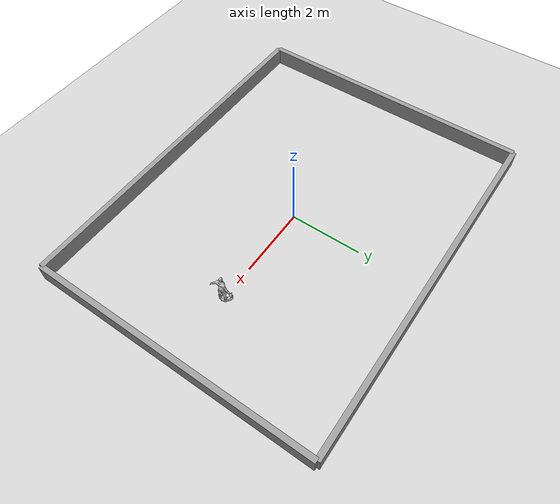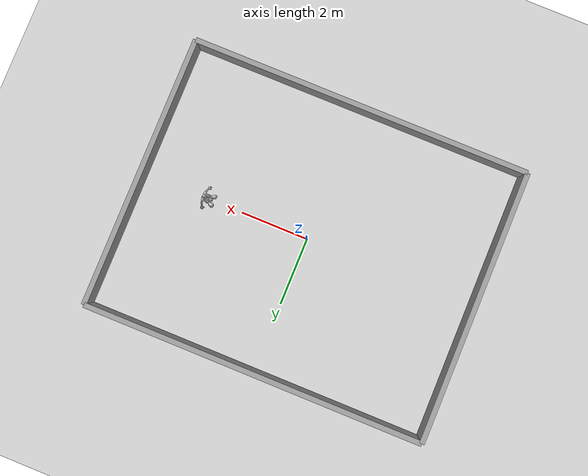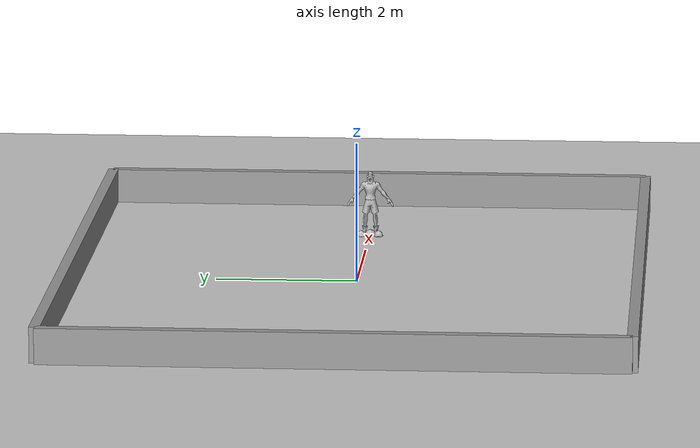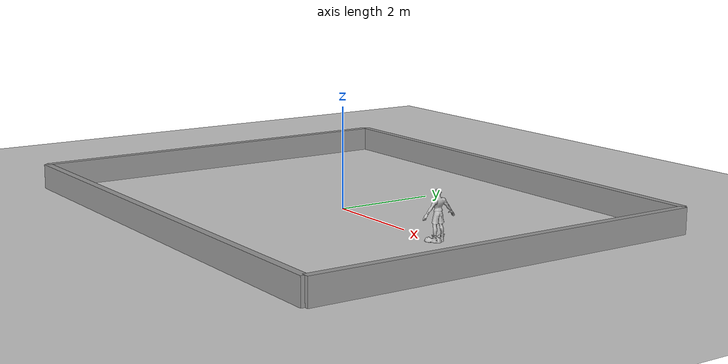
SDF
<sdf version="1.9">
 <world name="default">
  <plugin filename="gz-sim-sensors-system" name="gz::sim::systems::Sensors">
   <render_engine>ogre2</render_engine>
  </plugin>
  <plugin filename="gz-sim-physics-system" name="gz::sim::systems::Physics"/>
  <plugin filename="gz-sim-user-commands-system" name="gz::sim::systems::UserCommands"/>
  <plugin filename="gz-sim-scene-broadcaster-system" name="gz::sim::systems::SceneBroadcaster"/>
  <light name="sun" type="directional">
   <pose>0 0 10 0 0 0</pose>
   <diffuse>0.8 0.8 0.8 1</diffuse>
   <specular>0.2 0.2 0.2 1</specular>
   <attenuation>
    <range>1000</range>
    <constant>0.9</constant>
    <linear>0.01</linear>
    <quadratic>0.001</quadratic>
   </attenuation>
   <direction>-0.5 0.1 -0.9</direction>
  </light>
  <model name="ground_plane">
   <static>1</static>
   <link name="link">
    <collision name="collision">
     <geometry><plane><normal>0 0 1</normal><size>100 100</size></plane></geometry>
     <surface><friction><ode><mu>100</mu><mu2>50</mu2></ode></friction></surface>
    </collision>
    <visual name="visual">
     <cast_shadows>0</cast_shadows>
     <geometry><plane><normal>0 0 1</normal><size>100 100</size></plane></geometry>
     <material>
      <script><uri>file://media/materials/scripts/gazebo.material</uri><name>Gazebo/Grey</name></script>
     </material>
    </visual>
   </link>
  </model>
  <model name="simple_room">
   <static>1</static>
   <link name="west_wall">
    <pose>-5 0 0 0 0 0</pose>
    <collision name="collision">
     <geometry><box><size>0.15 8 0.5</size></box></geometry>
     <pose>0 0 0.25 0 0 0</pose>
    </collision>
    <visual name="visual">
     <pose>0 0 0.25 0 0 0</pose>
     <geometry><box><size>0.15 8 0.5</size></box></geometry>
     <material>
      <script><uri>file://media/materials/scripts/gazebo.material</uri><name>Gazebo/Grey</name></script>
      <ambient>1 1 1 1</ambient>
     </material>
    </visual>
   </link>
   <link name="east_wall">
    <pose>5 0 0 0 0 0</pose>
    <collision name="collision">
     <geometry><box><size>0.15 8 0.5</size></box></geometry>
     <pose>0 0 0.25 0 0 0</pose>
    </collision>
    <visual name="visual">
     <pose>0 0 0.25 0 0 0</pose>
     <geometry><box><size>0.15 8 0.5</size></box></geometry>
     <material>
      <script><uri>file://media/materials/scripts/gazebo.material</uri><name>Gazebo/Grey</name></script>
      <ambient>1 1 1 1</ambient>
     </material>
    </visual>
   </link>
   <link name="north_wall">
    <pose>0 4 0 0 0 0</pose>
    <collision name="collision">
     <geometry><box><size>10 0.15 0.5</size></box></geometry>
     <pose>0 0 0.25 0 0 0</pose>
    </collision>
    <visual name="visual">
     <pose>0 0 0.25 0 0 0</pose>
     <geometry><box><size>10 0.15 0.5</size></box></geometry>
     <material>
      <script><uri>file://media/materials/scripts/gazebo.material</uri><name>Gazebo/Grey</name></script>
      <ambient>1 1 1 1</ambient>
     </material>
    </visual>
   </link>
   <link name="south_wall">
    <pose>0 -4 0 0 0 0</pose>
    <collision name="collision">
     <geometry><box><size>10 0.15 0.5</size></box></geometry>
     <pose>0 0 0.25 0 0 0</pose>
    </collision>
    <visual name="visual">
     <pose>0 0 0.25 0 0 0</pose>
     <geometry><box><size>10 0.15 0.5</size></box></geometry>
     <material>
      <script><uri>file://media/materials/scripts/gazebo.material</uri><name>Gazebo/Grey</name></script>
      <ambient>1 1 1 1</ambient>
     </material>
    </visual>
   </link>
  </model>
  <model name="lebron">
   <pose>3 0 0 1.5708 0 -1.5708</pose>
   <static>true</static>
   <link name="link">
    <visual name="visual">
     <geometry><mesh><uri>model://lebron/lebron.obj</uri><scale>0.5 0.5 0.5</scale></mesh></geometry>
    </visual>
    <collision name="collision"><geometry><mesh><uri>model://lebron/lebron.obj</uri></mesh></geometry></collision>
   </link>
  </model>
  <gravity>0 0 -9.8</gravity>
  <magnetic_field>6e-06 2.3e-05 -4.2e-05</magnetic_field>
  <atmosphere type="adiabatic"/>
  <physics name="default_physics" type="ode">
   <max_step_size>0.001</max_step_size>
   <real_time_factor>1</real_time_factor>
   <real_time_update_rate>1000</real_time_update_rate>
  </physics>
  <scene><ambient>0.4 0.4 0.4 1</ambient><background>0.7 0.7 0.7 1</background><shadows>1</shadows></scene>
 </world>
</sdf>
